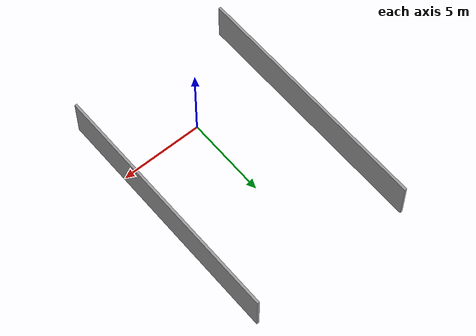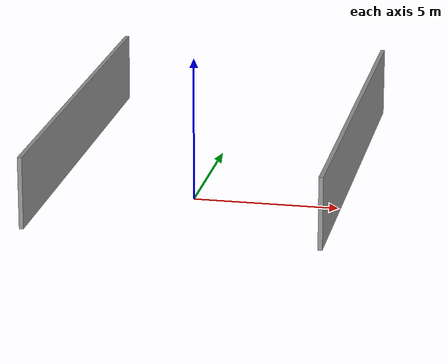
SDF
<?xml version='1.0'?>
<sdf version='1.6'>
  <model name='service_wall2'>
    <pose frame=''>0 3.5 0 0 -0 0</pose>
    <link name='Wall_14'>
      <collision name='Wall_14_Collision'>
        <geometry>
          <box>
            <size>15.15 0.15 2.5</size>
          </box>
        </geometry>
        <pose frame=''>0 0 1.25 0 -0 0</pose>
      </collision>
      <visual name='Wall_14_Visual'>
        <pose frame=''>0 0 1.25 0 -0 0</pose>
        <geometry>
          <box>
            <size>15.15 0.15 2.5</size>
          </box>
        </geometry>
        <material>
          <script>
            <uri>file://media/materials/scripts/gazebo.material</uri>
            <name>Gazebo/Grey</name>
          </script>
          <ambient>1 1 1 1</ambient>
        </material>
        <meta>
          <layer>0</layer>
        </meta>
      </visual>
      <pose frame=''>-5 0 0 0 -0 1.5708</pose>
    </link>
    <link name='Wall_16'>
      <collision name='Wall_16_Collision'>
        <geometry>
          <box>
            <size>15.15 0.15 2.5</size>
          </box>
        </geometry>
        <pose frame=''>0 0 1.25 0 -0 0</pose>
      </collision>
      <visual name='Wall_16_Visual'>
        <pose frame=''>0 0 1.25 0 -0 0</pose>
        <geometry>
          <box>
            <size>15.15 0.15 2.5</size>
          </box>
        </geometry>
        <material>
          <script>
            <uri>file://media/materials/scripts/gazebo.material</uri>
            <name>Gazebo/Grey</name>
          </script>
          <ambient>1 1 1 1</ambient>
        </material>
        <meta>
          <layer>0</layer>
        </meta>
      </visual>
      <pose frame=''>5 0 0 0 -0 1.5708</pose>
    </link>
    <static>1</static>
  </model>
</sdf>
